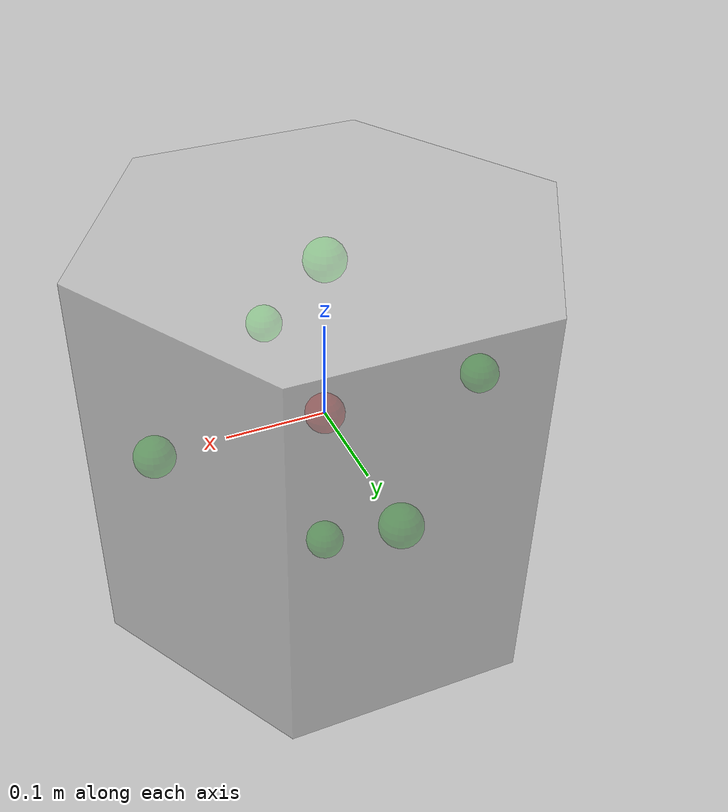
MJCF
<mujoco>
    <option gravity="0 0 0"/>

    <default class="main">
        <default class="spacecraft">
        <!-- solref: [time constant, damping ratio]
             solimp: [penetration tolerance, restitution, friction loss]
             friction: [sliding, torsional, rolling] -->
        <geom type="mesh"
            mesh="hex_prism"
            rgba="0.8 0.8 0.8 0.8"
            solref="0.01 0.6"
            solimp="0.9 0.95 0.001"
            friction="0.3 0.01 0.01"/>
            <site type="sphere" size="0.02" rgba="1 0 0 1"/>
        </default>
    </default>

    <asset>
        <!-- Hex shape to fit bskSat (hexagonal prism with each hexagonal Side = 1.15458 m, Height = 2 m (z)), scaled by a factor of 0.2 -->
        <mesh name="hex_prism"
              vertex="0.230916 0 0.2 0.115458 0.19999 0.2 -0.115458 0.19999 0.2 -0.230916 0 0.2 -0.115458 -0.19999 0.2 0.115458 -0.19999 0.2 0.230916 0 -0.2 0.115458 0.19999 -0.2 -0.115458 0.19999 -0.2 -0.230916 0 -0.2 -0.115458 -0.19999 -0.2 0.115458 -0.19999 -0.2"
              face="0 1 2 0 2 3 0 3 4 0 4 5 6 8 7 6 9 8 6 10 9 6 11 10 0 1 7 0 7 6 1 2 8 1 8 7 2 3 9 2 9 8 3 4 10 3 10 9 4 5 11 4 11 10 5 0 6 5 6 11"/>
    </asset>

    <worldbody>
        <!-- Spacecraft 0 -->
        <body name="bskSat0" childclass="spacecraft">
            <freejoint/>
            <inertial pos="0 0 0" mass="17.8" diaginertia="0.315 0.315 0.315"/>
            <site name="bskSat0_origin"/>
            <geom name="bskSat0_box"/>

            <!-- Thruster sites for 12 thrusters -->
            <site name="bskSat0_thr_0" pos="0 0 0.17" rgba="0 1 0 1"/>
            <site name="bskSat0_thr_1" pos="0 0 0.17" rgba="0 1 0 1"/>
            <site name="bskSat0_thr_2" pos="0 0 -0.17" rgba="0 1 0 1"/>
            <site name="bskSat0_thr_3" pos="0 0 -0.17" rgba="0 1 0 1"/>
            <site name="bskSat0_thr_4" pos="0.17 0 0" rgba="0 1 0 1"/>
            <site name="bskSat0_thr_5" pos="0.17 0 0" rgba="0 1 0 1"/>
            <site name="bskSat0_thr_6" pos="-0.17 0 0" rgba="0 1 0 1"/>
            <site name="bskSat0_thr_7" pos="-0.17 0 0" rgba="0 1 0 1"/>
            <site name="bskSat0_thr_8" pos="0 0.17 0" rgba="0 1 0 1"/>
            <site name="bskSat0_thr_9" pos="0 0.17 0" rgba="0 1 0 1"/>
            <site name="bskSat0_thr_10" pos="0 -0.17 0" rgba="0 1 0 1"/>
            <site name="bskSat0_thr_11" pos="0 -0.17 0" rgba="0 1 0 1"/>
        </body>

        <!-- Spacecraft 1 -->
        <body name="bskSat1" childclass="spacecraft">
            <freejoint/>
            <inertial pos="0 0 0" mass="17.8" diaginertia="0.315 0.315 0.315"/>
            <site name="bskSat1_origin"/>
            <geom name="bskSat1_box"/>

            <!-- Thruster sites for 12 thrusters -->
            <site name="bskSat1_thr_0" pos="0 0 0.17" rgba="0 1 0 1"/>
            <site name="bskSat1_thr_1" pos="0 0 0.17" rgba="0 1 0 1"/>
            <site name="bskSat1_thr_2" pos="0 0 -0.17" rgba="0 1 0 1"/>
            <site name="bskSat1_thr_3" pos="0 0 -0.17" rgba="0 1 0 1"/>
            <site name="bskSat1_thr_4" pos="0.17 0 0" rgba="0 1 0 1"/>
            <site name="bskSat1_thr_5" pos="0.17 0 0" rgba="0 1 0 1"/>
            <site name="bskSat1_thr_6" pos="-0.17 0 0" rgba="0 1 0 1"/>
            <site name="bskSat1_thr_7" pos="-0.17 0 0" rgba="0 1 0 1"/>
            <site name="bskSat1_thr_8" pos="0 0.17 0" rgba="0 1 0 1"/>
            <site name="bskSat1_thr_9" pos="0 0.17 0" rgba="0 1 0 1"/>
            <site name="bskSat1_thr_10" pos="0 -0.17 0" rgba="0 1 0 1"/>
            <site name="bskSat1_thr_11" pos="0 -0.17 0" rgba="0 1 0 1"/>
        </body>

        <!-- Add more spacecraft here -->
    </worldbody>

    <actuator>
        <!-- Thrusters for Spacecraft 0 -->
        <motor name="bskSat0_thr_0" site="bskSat0_thr_0" gear="1 0 0 0 0 0"/>
        <motor name="bskSat0_thr_1" site="bskSat0_thr_1" gear="-1 0 0 0 0 0"/>
        <motor name="bskSat0_thr_2" site="bskSat0_thr_2" gear="1 0 0 0 0 0"/>
        <motor name="bskSat0_thr_3" site="bskSat0_thr_3" gear="-1 0 0 0 0 0"/>
        <motor name="bskSat0_thr_4" site="bskSat0_thr_4" gear="0 1 0 0 0 0"/>
        <motor name="bskSat0_thr_5" site="bskSat0_thr_5" gear="0 -1 0 0 0 0"/>
        <motor name="bskSat0_thr_6" site="bskSat0_thr_6" gear="0 1 0 0 0 0"/>
        <motor name="bskSat0_thr_7" site="bskSat0_thr_7" gear="0 -1 0 0 0 0"/>
        <motor name="bskSat0_thr_8" site="bskSat0_thr_8" gear="0 0 1 0 0 0"/>
        <motor name="bskSat0_thr_9" site="bskSat0_thr_9" gear="0 0 -1 0 0 0"/>
        <motor name="bskSat0_thr_10" site="bskSat0_thr_10" gear="0 0 1 0 0 0"/>
        <motor name="bskSat0_thr_11" site="bskSat0_thr_11" gear="0 0 -1 0 0 0"/>

        <!-- Thrusters for Spacecraft 1 -->
        <motor name="bskSat1_thr_0" site="bskSat1_thr_0" gear="1 0 0 0 0 0"/>
        <motor name="bskSat1_thr_1" site="bskSat1_thr_1" gear="-1 0 0 0 0 0"/>
        <motor name="bskSat1_thr_2" site="bskSat1_thr_2" gear="1 0 0 0 0 0"/>
        <motor name="bskSat1_thr_3" site="bskSat1_thr_3" gear="-1 0 0 0 0 0"/>
        <motor name="bskSat1_thr_4" site="bskSat1_thr_4" gear="0 1 0 0 0 0"/>
        <motor name="bskSat1_thr_5" site="bskSat1_thr_5" gear="0 -1 0 0 0 0"/>
        <motor name="bskSat1_thr_6" site="bskSat1_thr_6" gear="0 1 0 0 0 0"/>
        <motor name="bskSat1_thr_7" site="bskSat1_thr_7" gear="0 -1 0 0 0 0"/>
        <motor name="bskSat1_thr_8" site="bskSat1_thr_8" gear="0 0 1 0 0 0"/>
        <motor name="bskSat1_thr_9" site="bskSat1_thr_9" gear="0 0 -1 0 0 0"/>
        <motor name="bskSat1_thr_10" site="bskSat1_thr_10" gear="0 0 1 0 0 0"/>
        <motor name="bskSat1_thr_11" site="bskSat1_thr_11" gear="0 0 -1 0 0 0"/>

        <!-- Add more thrusters for additional spacecraft here -->
    </actuator>
</mujoco>
